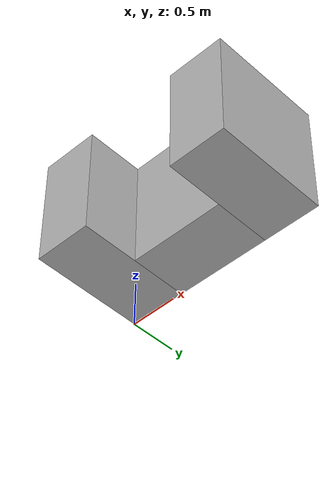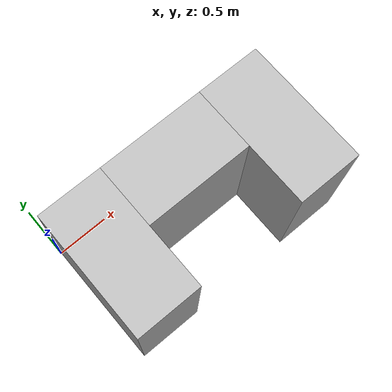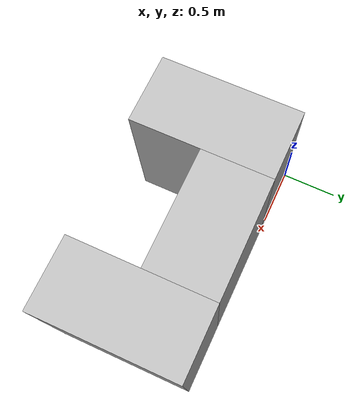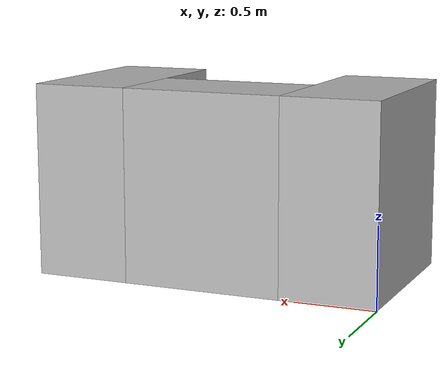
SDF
<?xml version="1.0"?>
<sdf version="1.6">
  <model name="obstacle_03">
    <static>true</static>

    <link name="link_03_1">
      <pose frame=''>0.30 -0.60 0.60 0 -0 0</pose>
      <collision name="body_collision">
        <geometry>
          <box>
            <size>0.60 1.20 1.20</size>
          </box>
        </geometry>
      </collision>

      <visual name="visual_03_1">
	<pose frame=''>0 0 0 0 -0 0</pose>
        <geometry>
          <box>
            <size>0.60 1.20 1.20</size>
          </box>
	</geometry>

	    <material>
		<script>
			<uri>model://obstacle_03/materials/scripts</uri>
			<uri>model://obstacle_03/materials/textures</uri>
			<name>repeated_03</name>
		</script>
	    </material>

      </visual>

    </link>

    <link name="link_03_2">
      <pose frame=''>1.10 -0.30 0.60 0 -0 0</pose>
      <collision name="body_collision">
        <geometry>
          <box>
            <size>1.00 0.60 1.20</size>
          </box>
        </geometry>
      </collision>

      <visual name="visual_03_2">
	<pose frame=''>0 0 0 0 -0 0</pose>
        <geometry>
          <box>
            <size>1.00 0.60 1.20</size>
          </box>
	</geometry>

	    <material>
		<script>
			<uri>model://obstacle_03/materials/scripts</uri>
			<uri>model://obstacle_03/materials/textures</uri>
			<name>repeated_03</name>
		</script>
	    </material>

      </visual>

    </link>

    <link name="link_03_3">
      <pose frame=''>1.90 -0.60 0.60 0 -0 0</pose>
      <collision name="body_collision">
        <geometry>
          <box>
            <size>0.60 1.20 1.20</size>
          </box>
        </geometry>
      </collision>

      <visual name="visual_03_3">
	<pose frame=''>0 0 0 0 -0 0</pose>
        <geometry>
          <box>
            <size>0.60 1.20 1.20</size>
          </box>
	</geometry>

	    <material>
		<script>
			<uri>model://obstacle_03/materials/scripts</uri>
			<uri>model://obstacle_03/materials/textures</uri>
			<name>repeated_03</name>
		</script>
	    </material>

      </visual>

    </link>

  </model>
</sdf>
